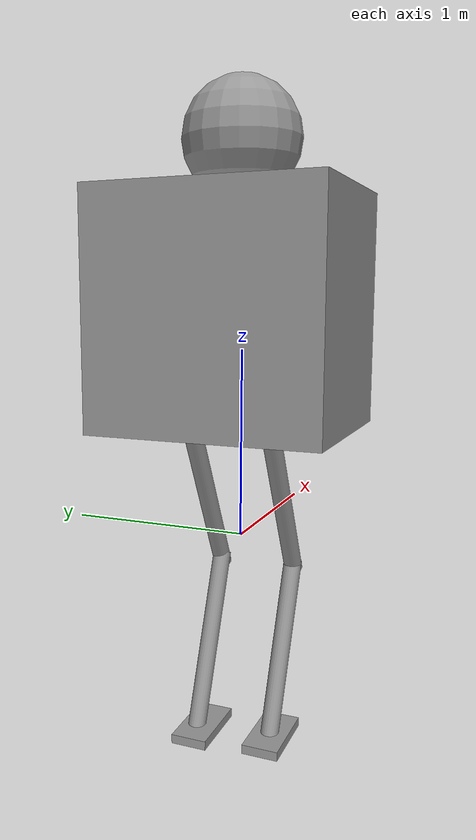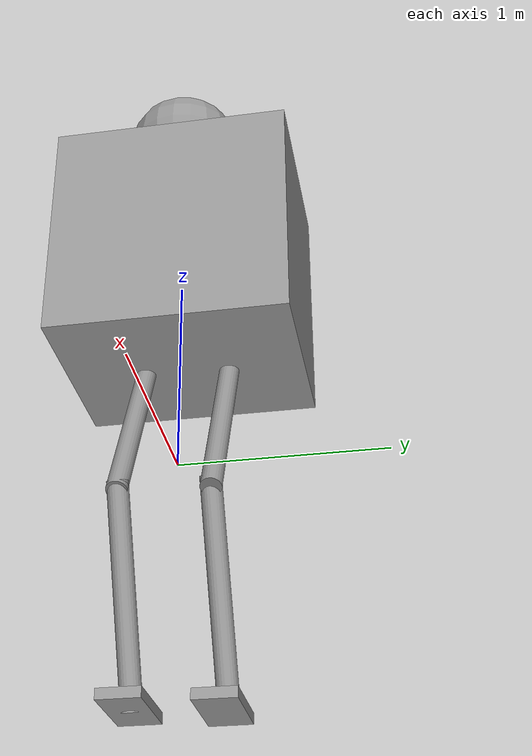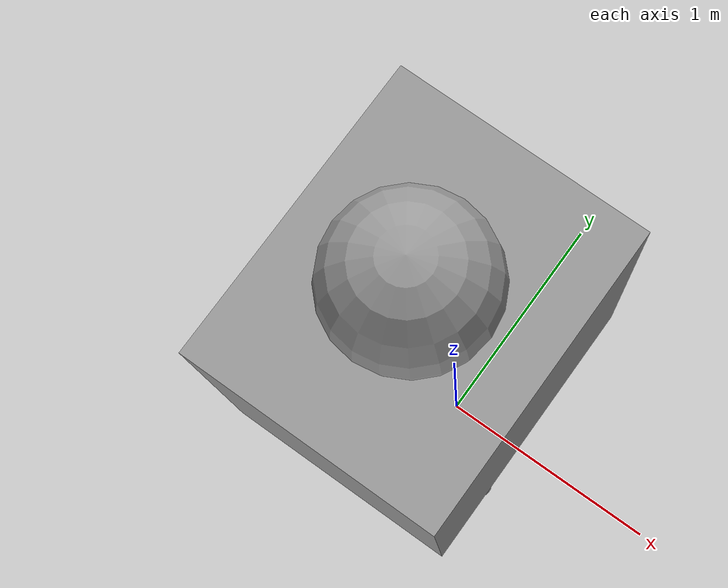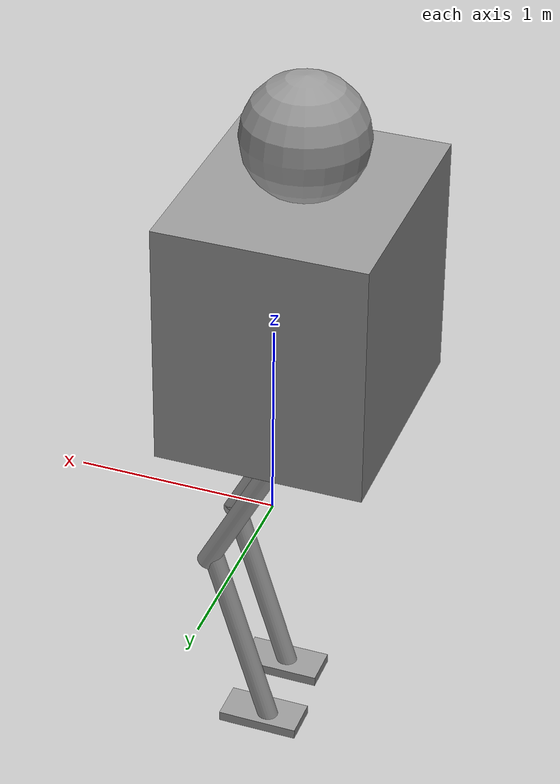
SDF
<?xml version='1.0'?>
<sdf version='1.6'>
  <model name='humonoidRobot'>
    <link name='link_3'>
      <pose frame=''>-0.133776 -0.006988 1.20531 0 -0 0</pose>
      <inertial>
        <mass>1</mass>
        <inertia>
          <ixx>0.166667</ixx>
          <ixy>0</ixy>
          <ixz>0</ixz>
          <iyy>0.166667</iyy>
          <iyz>0</iyz>
          <izz>0.166667</izz>
        </inertia>
        <pose frame=''>0 0 0 0 -0 0</pose>
      </inertial>
      <gravity>1</gravity>
      <self_collide>0</self_collide>
      <kinematic>0</kinematic>
      <visual name='visual'>
        <pose frame=''>0 0 0 0 -0 0</pose>
        <geometry>
          <box>
            <size>1 1.2 1.2</size>
          </box>
        </geometry>
        <material>
          <lighting>1</lighting>
          <script>
            <uri>file://media/materials/scripts/gazebo.material</uri>
            <name>Gazebo/Grey</name>
          </script>
          <shader type='pixel'>
            <normal_map>__default__</normal_map>
          </shader>
          <ambient>0.3 0.3 0.3 1</ambient>
          <diffuse>0.7 0.7 0.7 1</diffuse>
          <specular>0.01 0.01 0.01 1</specular>
          <emissive>0 0 0 1</emissive>
        </material>
        <transparency>0</transparency>
        <cast_shadows>1</cast_shadows>
      </visual>
      <collision name='collision'>
        <laser_retro>0</laser_retro>
        <max_contacts>10</max_contacts>
        <pose frame=''>0 0 0 0 -0 0</pose>
        <geometry>
          <box>
            <size>1 1.2 1.2</size>
          </box>
        </geometry>
        <surface>
          <friction>
            <ode>
              <mu>1</mu>
              <mu2>1</mu2>
              <fdir1>0 0 0</fdir1>
              <slip1>0</slip1>
              <slip2>0</slip2>
            </ode>
            <torsional>
              <coefficient>1</coefficient>
              <patch_radius>0</patch_radius>
              <surface_radius>0</surface_radius>
              <use_patch_radius>1</use_patch_radius>
              <ode>
                <slip>0</slip>
              </ode>
            </torsional>
          </friction>
          <bounce>
            <restitution_coefficient>0</restitution_coefficient>
            <threshold>1e+06</threshold>
          </bounce>
          <contact>
            <collide_without_contact>0</collide_without_contact>
            <collide_without_contact_bitmask>1</collide_without_contact_bitmask>
            <collide_bitmask>1</collide_bitmask>
            <ode>
              <soft_cfm>0</soft_cfm>
              <soft_erp>0.2</soft_erp>
              <kp>1e+13</kp>
              <kd>1</kd>
              <max_vel>0.01</max_vel>
              <min_depth>0</min_depth>
            </ode>
            <bullet>
              <split_impulse>1</split_impulse>
              <split_impulse_penetration_threshold>-0.01</split_impulse_penetration_threshold>
              <soft_cfm>0</soft_cfm>
              <soft_erp>0.2</soft_erp>
              <kp>1e+13</kp>
              <kd>1</kd>
            </bullet>
          </contact>
        </surface>
      </collision>
    </link>
    <link name='link_4'>
      <pose frame=''>-0.004543 -0.187622 -1.13416 0 -0 0</pose>
      <inertial>
        <mass>1</mass>
        <inertia>
          <ixx>0.166667</ixx>
          <ixy>0</ixy>
          <ixz>0</ixz>
          <iyy>0.166667</iyy>
          <iyz>0</iyz>
          <izz>0.166667</izz>
        </inertia>
        <pose frame=''>0 0 0 0 -0 0</pose>
      </inertial>
      <gravity>1</gravity>
      <self_collide>0</self_collide>
      <kinematic>0</kinematic>
      <visual name='visual'>
        <pose frame=''>0 0 0 0 -0 0</pose>
        <geometry>
          <box>
            <size>0.4 0.2 0.05</size>
          </box>
        </geometry>
        <material>
          <lighting>1</lighting>
          <script>
            <uri>file://media/materials/scripts/gazebo.material</uri>
            <name>Gazebo/Grey</name>
          </script>
          <shader type='pixel'>
            <normal_map>__default__</normal_map>
          </shader>
          <ambient>0.3 0.3 0.3 1</ambient>
          <diffuse>0.7 0.7 0.7 1</diffuse>
          <specular>0.01 0.01 0.01 1</specular>
          <emissive>0 0 0 1</emissive>
        </material>
        <transparency>0</transparency>
        <cast_shadows>1</cast_shadows>
      </visual>
      <collision name='collision'>
        <laser_retro>0</laser_retro>
        <max_contacts>10</max_contacts>
        <pose frame=''>0 0 0 0 -0 0</pose>
        <geometry>
          <box>
            <size>0.4 0.2 0.05</size>
          </box>
        </geometry>
        <surface>
          <friction>
            <ode>
              <mu>1</mu>
              <mu2>1</mu2>
              <fdir1>0 0 0</fdir1>
              <slip1>0</slip1>
              <slip2>0</slip2>
            </ode>
            <torsional>
              <coefficient>1</coefficient>
              <patch_radius>0</patch_radius>
              <surface_radius>0</surface_radius>
              <use_patch_radius>1</use_patch_radius>
              <ode>
                <slip>0</slip>
              </ode>
            </torsional>
          </friction>
          <bounce>
            <restitution_coefficient>0</restitution_coefficient>
            <threshold>1e+06</threshold>
          </bounce>
          <contact>
            <collide_without_contact>0</collide_without_contact>
            <collide_without_contact_bitmask>1</collide_without_contact_bitmask>
            <collide_bitmask>1</collide_bitmask>
            <ode>
              <soft_cfm>0</soft_cfm>
              <soft_erp>0.2</soft_erp>
              <kp>1e+13</kp>
              <kd>1</kd>
              <max_vel>0.01</max_vel>
              <min_depth>0</min_depth>
            </ode>
            <bullet>
              <split_impulse>1</split_impulse>
              <split_impulse_penetration_threshold>-0.01</split_impulse_penetration_threshold>
              <soft_cfm>0</soft_cfm>
              <soft_erp>0.2</soft_erp>
              <kp>1e+13</kp>
              <kd>1</kd>
            </bullet>
          </contact>
        </surface>
      </collision>
    </link>
    <link name='link_4_clone'>
      <pose frame=''>-0.036642 0.212731 -1.14543 0 -0 0</pose>
      <inertial>
        <mass>1</mass>
        <inertia>
          <ixx>0.166667</ixx>
          <ixy>0</ixy>
          <ixz>0</ixz>
          <iyy>0.166667</iyy>
          <iyz>0</iyz>
          <izz>0.166667</izz>
        </inertia>
        <pose frame=''>0 0 0 0 -0 0</pose>
      </inertial>
      <self_collide>0</self_collide>
      <kinematic>0</kinematic>
      <visual name='visual'>
        <pose frame=''>0 0 0 0 -0 0</pose>
        <geometry>
          <box>
            <size>0.4 0.2 0.05</size>
          </box>
        </geometry>
        <material>
          <lighting>1</lighting>
          <script>
            <uri>file://media/materials/scripts/gazebo.material</uri>
            <name>Gazebo/Grey</name>
          </script>
          <shader type='pixel'>
            <normal_map>__default__</normal_map>
          </shader>
          <ambient>0.3 0.3 0.3 1</ambient>
          <diffuse>0.7 0.7 0.7 1</diffuse>
          <specular>0.01 0.01 0.01 1</specular>
          <emissive>0 0 0 1</emissive>
        </material>
        <transparency>0</transparency>
        <cast_shadows>1</cast_shadows>
      </visual>
      <collision name='collision'>
        <laser_retro>0</laser_retro>
        <max_contacts>10</max_contacts>
        <pose frame=''>0 0 0 0 -0 0</pose>
        <geometry>
          <box>
            <size>0.4 0.2 0.05</size>
          </box>
        </geometry>
        <surface>
          <friction>
            <ode>
              <mu>1</mu>
              <mu2>1</mu2>
              <fdir1>0 0 0</fdir1>
              <slip1>0</slip1>
              <slip2>0</slip2>
            </ode>
            <torsional>
              <coefficient>1</coefficient>
              <patch_radius>0</patch_radius>
              <surface_radius>0</surface_radius>
              <use_patch_radius>1</use_patch_radius>
              <ode>
                <slip>0</slip>
              </ode>
            </torsional>
          </friction>
          <bounce>
            <restitution_coefficient>0</restitution_coefficient>
            <threshold>1e+06</threshold>
          </bounce>
          <contact>
            <collide_without_contact>0</collide_without_contact>
            <collide_without_contact_bitmask>1</collide_without_contact_bitmask>
            <collide_bitmask>1</collide_bitmask>
            <ode>
              <soft_cfm>0</soft_cfm>
              <soft_erp>0.2</soft_erp>
              <kp>1e+13</kp>
              <kd>1</kd>
              <max_vel>0.01</max_vel>
              <min_depth>0</min_depth>
            </ode>
            <bullet>
              <split_impulse>1</split_impulse>
              <split_impulse_penetration_threshold>-0.01</split_impulse_penetration_threshold>
              <soft_cfm>0</soft_cfm>
              <soft_erp>0.2</soft_erp>
              <kp>1e+13</kp>
              <kd>1</kd>
            </bullet>
          </contact>
        </surface>
      </collision>
    </link>
    <link name='link_6'>
      <pose frame=''>0.123859 -0.197625 -0.676756 0.029583 0.315925 0</pose>
      <inertial>
        <mass>1</mass>
        <inertia>
          <ixx>0.145833</ixx>
          <ixy>0</ixy>
          <ixz>0</ixz>
          <iyy>0.145833</iyy>
          <iyz>0</iyz>
          <izz>0.125</izz>
        </inertia>
        <pose frame=''>0 0 0 0 -0 0</pose>
      </inertial>
      <gravity>1</gravity>
      <self_collide>0</self_collide>
      <kinematic>0</kinematic>
      <visual name='visual'>
        <pose frame=''>0 0 0 0 -0 0</pose>
        <geometry>
          <cylinder>
            <radius>0.05</radius>
            <length>1</length>
          </cylinder>
        </geometry>
        <material>
          <lighting>1</lighting>
          <script>
            <uri>file://media/materials/scripts/gazebo.material</uri>
            <name>Gazebo/Grey</name>
          </script>
          <shader type='pixel'>
            <normal_map>__default__</normal_map>
          </shader>
          <ambient>0.3 0.3 0.3 1</ambient>
          <diffuse>0.7 0.7 0.7 1</diffuse>
          <specular>0.01 0.01 0.01 1</specular>
          <emissive>0 0 0 1</emissive>
        </material>
        <transparency>0</transparency>
        <cast_shadows>1</cast_shadows>
      </visual>
      <collision name='collision'>
        <laser_retro>0</laser_retro>
        <max_contacts>10</max_contacts>
        <pose frame=''>0 0 0 0 -0 0</pose>
        <geometry>
          <cylinder>
            <radius>0.05</radius>
            <length>1</length>
          </cylinder>
        </geometry>
        <surface>
          <friction>
            <ode>
              <mu>1</mu>
              <mu2>1</mu2>
              <fdir1>0 0 0</fdir1>
              <slip1>0</slip1>
              <slip2>0</slip2>
            </ode>
            <torsional>
              <coefficient>1</coefficient>
              <patch_radius>0</patch_radius>
              <surface_radius>0</surface_radius>
              <use_patch_radius>1</use_patch_radius>
              <ode>
                <slip>0</slip>
              </ode>
            </torsional>
          </friction>
          <bounce>
            <restitution_coefficient>0</restitution_coefficient>
            <threshold>1e+06</threshold>
          </bounce>
          <contact>
            <collide_without_contact>0</collide_without_contact>
            <collide_without_contact_bitmask>1</collide_without_contact_bitmask>
            <collide_bitmask>1</collide_bitmask>
            <ode>
              <soft_cfm>0</soft_cfm>
              <soft_erp>0.2</soft_erp>
              <kp>1e+13</kp>
              <kd>1</kd>
              <max_vel>0.01</max_vel>
              <min_depth>0</min_depth>
            </ode>
            <bullet>
              <split_impulse>1</split_impulse>
              <split_impulse_penetration_threshold>-0.01</split_impulse_penetration_threshold>
              <soft_cfm>0</soft_cfm>
              <soft_erp>0.2</soft_erp>
              <kp>1e+13</kp>
              <kd>1</kd>
            </bullet>
          </contact>
        </surface>
      </collision>
    </link>
    <link name='link_6_clone'>
      <pose frame=''>0.083313 0.218155 -0.666382 0.029583 0.315925 0</pose>
      <inertial>
        <mass>1</mass>
        <inertia>
          <ixx>0.145833</ixx>
          <ixy>0</ixy>
          <ixz>0</ixz>
          <iyy>0.145833</iyy>
          <iyz>0</iyz>
          <izz>0.125</izz>
        </inertia>
        <pose frame=''>0 0 0 0 -0 0</pose>
      </inertial>
      <self_collide>0</self_collide>
      <kinematic>0</kinematic>
      <visual name='visual'>
        <pose frame=''>0 0 0 0 -0 0</pose>
        <geometry>
          <cylinder>
            <radius>0.05</radius>
            <length>1</length>
          </cylinder>
        </geometry>
        <material>
          <lighting>1</lighting>
          <script>
            <uri>file://media/materials/scripts/gazebo.material</uri>
            <name>Gazebo/Grey</name>
          </script>
          <shader type='pixel'>
            <normal_map>__default__</normal_map>
          </shader>
          <ambient>0.3 0.3 0.3 1</ambient>
          <diffuse>0.7 0.7 0.7 1</diffuse>
          <specular>0.01 0.01 0.01 1</specular>
          <emissive>0 0 0 1</emissive>
        </material>
        <transparency>0</transparency>
        <cast_shadows>1</cast_shadows>
      </visual>
      <collision name='collision'>
        <laser_retro>0</laser_retro>
        <max_contacts>10</max_contacts>
        <pose frame=''>0 0 0 0 -0 0</pose>
        <geometry>
          <cylinder>
            <radius>0.05</radius>
            <length>1</length>
          </cylinder>
        </geometry>
        <surface>
          <friction>
            <ode>
              <mu>1</mu>
              <mu2>1</mu2>
              <fdir1>0 0 0</fdir1>
              <slip1>0</slip1>
              <slip2>0</slip2>
            </ode>
            <torsional>
              <coefficient>1</coefficient>
              <patch_radius>0</patch_radius>
              <surface_radius>0</surface_radius>
              <use_patch_radius>1</use_patch_radius>
              <ode>
                <slip>0</slip>
              </ode>
            </torsional>
          </friction>
          <bounce>
            <restitution_coefficient>0</restitution_coefficient>
            <threshold>1e+06</threshold>
          </bounce>
          <contact>
            <collide_without_contact>0</collide_without_contact>
            <collide_without_contact_bitmask>1</collide_without_contact_bitmask>
            <collide_bitmask>1</collide_bitmask>
            <ode>
              <soft_cfm>0</soft_cfm>
              <soft_erp>0.2</soft_erp>
              <kp>1e+13</kp>
              <kd>1</kd>
              <max_vel>0.01</max_vel>
              <min_depth>0</min_depth>
            </ode>
            <bullet>
              <split_impulse>1</split_impulse>
              <split_impulse_penetration_threshold>-0.01</split_impulse_penetration_threshold>
              <soft_cfm>0</soft_cfm>
              <soft_erp>0.2</soft_erp>
              <kp>1e+13</kp>
              <kd>1</kd>
            </bullet>
          </contact>
        </surface>
      </collision>
    </link>
    <link name='link_7'>
      <pose frame=''>0.058004 -0.212091 0.192466 0 -0.481307 0</pose>
      <inertial>
        <mass>1</mass>
        <inertia>
          <ixx>0.145833</ixx>
          <ixy>0</ixy>
          <ixz>0</ixz>
          <iyy>0.145833</iyy>
          <iyz>0</iyz>
          <izz>0.125</izz>
        </inertia>
        <pose frame=''>0 0 0 0 -0 0</pose>
      </inertial>
      <gravity>1</gravity>
      <self_collide>0</self_collide>
      <kinematic>0</kinematic>
      <visual name='visual'>
        <pose frame=''>0 0 0 0 -0 0</pose>
        <geometry>
          <cylinder>
            <radius>0.05</radius>
            <length>1</length>
          </cylinder>
        </geometry>
        <material>
          <lighting>1</lighting>
          <script>
            <uri>file://media/materials/scripts/gazebo.material</uri>
            <name>Gazebo/Grey</name>
          </script>
          <shader type='pixel'>
            <normal_map>__default__</normal_map>
          </shader>
          <ambient>0.3 0.3 0.3 1</ambient>
          <diffuse>0.7 0.7 0.7 1</diffuse>
          <specular>0.01 0.01 0.01 1</specular>
          <emissive>0 0 0 1</emissive>
        </material>
        <transparency>0</transparency>
        <cast_shadows>1</cast_shadows>
      </visual>
      <collision name='collision'>
        <laser_retro>0</laser_retro>
        <max_contacts>10</max_contacts>
        <pose frame=''>0 0 0 0 -0 0</pose>
        <geometry>
          <cylinder>
            <radius>0.05</radius>
            <length>1</length>
          </cylinder>
        </geometry>
        <surface>
          <friction>
            <ode>
              <mu>1</mu>
              <mu2>1</mu2>
              <fdir1>0 0 0</fdir1>
              <slip1>0</slip1>
              <slip2>0</slip2>
            </ode>
            <torsional>
              <coefficient>1</coefficient>
              <patch_radius>0</patch_radius>
              <surface_radius>0</surface_radius>
              <use_patch_radius>1</use_patch_radius>
              <ode>
                <slip>0</slip>
              </ode>
            </torsional>
          </friction>
          <bounce>
            <restitution_coefficient>0</restitution_coefficient>
            <threshold>1e+06</threshold>
          </bounce>
          <contact>
            <collide_without_contact>0</collide_without_contact>
            <collide_without_contact_bitmask>1</collide_without_contact_bitmask>
            <collide_bitmask>1</collide_bitmask>
            <ode>
              <soft_cfm>0</soft_cfm>
              <soft_erp>0.2</soft_erp>
              <kp>1e+13</kp>
              <kd>1</kd>
              <max_vel>0.01</max_vel>
              <min_depth>0</min_depth>
            </ode>
            <bullet>
              <split_impulse>1</split_impulse>
              <split_impulse_penetration_threshold>-0.01</split_impulse_penetration_threshold>
              <soft_cfm>0</soft_cfm>
              <soft_erp>0.2</soft_erp>
              <kp>1e+13</kp>
              <kd>1</kd>
            </bullet>
          </contact>
        </surface>
      </collision>
    </link>
    <link name='link_7_clone'>
      <pose frame=''>0.034038 0.210595 0.183929 0 -0.481307 0</pose>
      <inertial>
        <mass>1</mass>
        <inertia>
          <ixx>0.145833</ixx>
          <ixy>0</ixy>
          <ixz>0</ixz>
          <iyy>0.145833</iyy>
          <iyz>0</iyz>
          <izz>0.125</izz>
        </inertia>
        <pose frame=''>0 0 0 0 -0 0</pose>
      </inertial>
      <self_collide>0</self_collide>
      <kinematic>0</kinematic>
      <visual name='visual'>
        <pose frame=''>0 0 0 0 -0 0</pose>
        <geometry>
          <cylinder>
            <radius>0.05</radius>
            <length>1</length>
          </cylinder>
        </geometry>
        <material>
          <lighting>1</lighting>
          <script>
            <uri>file://media/materials/scripts/gazebo.material</uri>
            <name>Gazebo/Grey</name>
          </script>
          <shader type='pixel'>
            <normal_map>__default__</normal_map>
          </shader>
          <ambient>0.3 0.3 0.3 1</ambient>
          <diffuse>0.7 0.7 0.7 1</diffuse>
          <specular>0.01 0.01 0.01 1</specular>
          <emissive>0 0 0 1</emissive>
        </material>
        <transparency>0</transparency>
        <cast_shadows>1</cast_shadows>
      </visual>
      <collision name='collision'>
        <laser_retro>0</laser_retro>
        <max_contacts>10</max_contacts>
        <pose frame=''>0 0 0 0 -0 0</pose>
        <geometry>
          <cylinder>
            <radius>0.05</radius>
            <length>1</length>
          </cylinder>
        </geometry>
        <surface>
          <friction>
            <ode>
              <mu>1</mu>
              <mu2>1</mu2>
              <fdir1>0 0 0</fdir1>
              <slip1>0</slip1>
              <slip2>0</slip2>
            </ode>
            <torsional>
              <coefficient>1</coefficient>
              <patch_radius>0</patch_radius>
              <surface_radius>0</surface_radius>
              <use_patch_radius>1</use_patch_radius>
              <ode>
                <slip>0</slip>
              </ode>
            </torsional>
          </friction>
          <bounce>
            <restitution_coefficient>0</restitution_coefficient>
            <threshold>1e+06</threshold>
          </bounce>
          <contact>
            <collide_without_contact>0</collide_without_contact>
            <collide_without_contact_bitmask>1</collide_without_contact_bitmask>
            <collide_bitmask>1</collide_bitmask>
            <ode>
              <soft_cfm>0</soft_cfm>
              <soft_erp>0.2</soft_erp>
              <kp>1e+13</kp>
              <kd>1</kd>
              <max_vel>0.01</max_vel>
              <min_depth>0</min_depth>
            </ode>
            <bullet>
              <split_impulse>1</split_impulse>
              <split_impulse_penetration_threshold>-0.01</split_impulse_penetration_threshold>
              <soft_cfm>0</soft_cfm>
              <soft_erp>0.2</soft_erp>
              <kp>1e+13</kp>
              <kd>1</kd>
            </bullet>
          </contact>
        </surface>
      </collision>
    </link>
    <link name='link_8'>
      <pose frame=''>-0.124252 -0.036716 2.04102 0 -0 0</pose>
      <inertial>
        <mass>1</mass>
        <inertia>
          <ixx>0.1</ixx>
          <ixy>0</ixy>
          <ixz>0</ixz>
          <iyy>0.1</iyy>
          <iyz>0</iyz>
          <izz>0.1</izz>
        </inertia>
        <pose frame=''>0 0 0 0 -0 0</pose>
      </inertial>
      <gravity>1</gravity>
      <self_collide>0</self_collide>
      <kinematic>0</kinematic>
      <visual name='visual'>
        <pose frame=''>0 0 0 0 -0 0</pose>
        <geometry>
          <sphere>
            <radius>0.3</radius>
          </sphere>
        </geometry>
        <material>
          <lighting>1</lighting>
          <script>
            <uri>file://media/materials/scripts/gazebo.material</uri>
            <name>Gazebo/Grey</name>
          </script>
          <shader type='pixel'>
            <normal_map>__default__</normal_map>
          </shader>
          <ambient>0.3 0.3 0.3 1</ambient>
          <diffuse>0.7 0.7 0.7 1</diffuse>
          <specular>0.01 0.01 0.01 1</specular>
          <emissive>0 0 0 1</emissive>
        </material>
        <transparency>0</transparency>
        <cast_shadows>1</cast_shadows>
      </visual>
      <collision name='collision'>
        <laser_retro>0</laser_retro>
        <max_contacts>10</max_contacts>
        <pose frame=''>0 0 0 0 -0 0</pose>
        <geometry>
          <sphere>
            <radius>0.3</radius>
          </sphere>
        </geometry>
        <surface>
          <friction>
            <ode>
              <mu>1</mu>
              <mu2>1</mu2>
              <fdir1>0 0 0</fdir1>
              <slip1>0</slip1>
              <slip2>0</slip2>
            </ode>
            <torsional>
              <coefficient>1</coefficient>
              <patch_radius>0</patch_radius>
              <surface_radius>0</surface_radius>
              <use_patch_radius>1</use_patch_radius>
              <ode>
                <slip>0</slip>
              </ode>
            </torsional>
          </friction>
          <bounce>
            <restitution_coefficient>0</restitution_coefficient>
            <threshold>1e+06</threshold>
          </bounce>
          <contact>
            <collide_without_contact>0</collide_without_contact>
            <collide_without_contact_bitmask>1</collide_without_contact_bitmask>
            <collide_bitmask>1</collide_bitmask>
            <ode>
              <soft_cfm>0</soft_cfm>
              <soft_erp>0.2</soft_erp>
              <kp>1e+13</kp>
              <kd>1</kd>
              <max_vel>0.01</max_vel>
              <min_depth>0</min_depth>
            </ode>
            <bullet>
              <split_impulse>1</split_impulse>
              <split_impulse_penetration_threshold>-0.01</split_impulse_penetration_threshold>
              <soft_cfm>0</soft_cfm>
              <soft_erp>0.2</soft_erp>
              <kp>1e+13</kp>
              <kd>1</kd>
            </bullet>
          </contact>
        </surface>
      </collision>
    </link>
    <joint name='link_3_JOINT_4' type='fixed'>
      <parent>link_3</parent>
      <child>link_8</child>
      <pose frame=''>0 0 0 0 -0 0</pose>
      <physics>
        <ode>
          <limit>
            <cfm>0</cfm>
            <erp>0.2</erp>
          </limit>
          <suspension>
            <cfm>0</cfm>
            <erp>0.2</erp>
          </suspension>
        </ode>
      </physics>
    </joint>
    <joint name='link_3_JOINT_5' type='revolute'>
      <parent>link_3</parent>
      <child>link_7</child>
      <pose frame=''>0 0 0 0 -0 0</pose>
      <axis>
        <xyz>0 1 0</xyz>
        <use_parent_model_frame>0</use_parent_model_frame>
        <limit>
          <lower>-1.79769e+308</lower>
          <upper>1.79769e+308</upper>
          <effort>-1</effort>
          <velocity>-1</velocity>
        </limit>
        <dynamics>
          <spring_reference>0</spring_reference>
          <spring_stiffness>0</spring_stiffness>
          <damping>0</damping>
        </dynamics>
      </axis>
      <physics>
        <ode>
          <limit>
            <cfm>0</cfm>
            <erp>0.2</erp>
          </limit>
          <suspension>
            <cfm>0</cfm>
            <erp>0.2</erp>
          </suspension>
        </ode>
      </physics>
    </joint>
    <joint name='link_3_JOINT_6' type='revolute'>
      <parent>link_3</parent>
      <child>link_7_clone</child>
      <pose frame=''>0 0 0 0 -0 0</pose>
      <axis>
        <xyz>0 1 0</xyz>
        <use_parent_model_frame>0</use_parent_model_frame>
        <limit>
          <lower>-1.79769e+308</lower>
          <upper>1.79769e+308</upper>
          <effort>-1</effort>
          <velocity>-1</velocity>
        </limit>
        <dynamics>
          <spring_reference>0</spring_reference>
          <spring_stiffness>0</spring_stiffness>
          <damping>0</damping>
        </dynamics>
      </axis>
      <physics>
        <ode>
          <limit>
            <cfm>0</cfm>
            <erp>0.2</erp>
          </limit>
          <suspension>
            <cfm>0</cfm>
            <erp>0.2</erp>
          </suspension>
        </ode>
      </physics>
    </joint>
    <joint name='link_6_JOINT_3' type='revolute'>
      <parent>link_6</parent>
      <child>link_4</child>
      <pose frame=''>0 0 0 0 -0 0</pose>
      <axis>
        <xyz>0 1 0</xyz>
        <use_parent_model_frame>0</use_parent_model_frame>
        <limit>
          <lower>-1.79769e+308</lower>
          <upper>1.79769e+308</upper>
          <effort>-1</effort>
          <velocity>-1</velocity>
        </limit>
        <dynamics>
          <spring_reference>0</spring_reference>
          <spring_stiffness>0</spring_stiffness>
          <damping>0</damping>
        </dynamics>
      </axis>
      <physics>
        <ode>
          <limit>
            <cfm>0</cfm>
            <erp>0.2</erp>
          </limit>
          <suspension>
            <cfm>0</cfm>
            <erp>0.2</erp>
          </suspension>
        </ode>
      </physics>
    </joint>
    <joint name='link_6_clone_JOINT_8' type='revolute'>
      <parent>link_6_clone</parent>
      <child>link_4_clone</child>
      <pose frame=''>0 0 0 0 -0 0</pose>
      <axis>
        <xyz>0 1 0</xyz>
        <use_parent_model_frame>0</use_parent_model_frame>
        <limit>
          <lower>-1.79769e+308</lower>
          <upper>1.79769e+308</upper>
          <effort>-1</effort>
          <velocity>-1</velocity>
        </limit>
        <dynamics>
          <spring_reference>0</spring_reference>
          <spring_stiffness>0</spring_stiffness>
          <damping>0</damping>
        </dynamics>
      </axis>
      <physics>
        <ode>
          <limit>
            <cfm>0</cfm>
            <erp>0.2</erp>
          </limit>
          <suspension>
            <cfm>0</cfm>
            <erp>0.2</erp>
          </suspension>
        </ode>
      </physics>
    </joint>
    <joint name='link_7_JOINT_1' type='revolute'>
      <parent>link_7</parent>
      <child>link_6</child>
      <pose frame=''>0 0 0 0 -0 0</pose>
      <axis>
        <xyz>0 1 0</xyz>
        <use_parent_model_frame>0</use_parent_model_frame>
        <limit>
          <lower>-1.79769e+308</lower>
          <upper>1.79769e+308</upper>
          <effort>-1</effort>
          <velocity>-1</velocity>
        </limit>
        <dynamics>
          <spring_reference>0</spring_reference>
          <spring_stiffness>0</spring_stiffness>
          <damping>0</damping>
          <friction>0</friction>
        </dynamics>
      </axis>
      <physics>
        <ode>
          <limit>
            <cfm>0</cfm>
            <erp>0.2</erp>
          </limit>
          <suspension>
            <cfm>0</cfm>
            <erp>0.2</erp>
          </suspension>
        </ode>
      </physics>
    </joint>
    <joint name='link_7_clone_JOINT_7' type='revolute'>
      <parent>link_7_clone</parent>
      <child>link_6_clone</child>
      <pose frame=''>0 0 0 0 -0 0</pose>
      <axis>
        <xyz>0 1 0</xyz>
        <use_parent_model_frame>0</use_parent_model_frame>
        <limit>
          <lower>-1.79769e+308</lower>
          <upper>1.79769e+308</upper>
          <effort>-1</effort>
          <velocity>-1</velocity>
        </limit>
        <dynamics>
          <spring_reference>0</spring_reference>
          <spring_stiffness>0</spring_stiffness>
          <damping>0</damping>
        </dynamics>
      </axis>
      <physics>
        <ode>
          <limit>
            <cfm>0</cfm>
            <erp>0.2</erp>
          </limit>
          <suspension>
            <cfm>0</cfm>
            <erp>0.2</erp>
          </suspension>
        </ode>
      </physics>
    </joint>
    <static>0</static>
    <allow_auto_disable>1</allow_auto_disable>
  </model>
</sdf>
